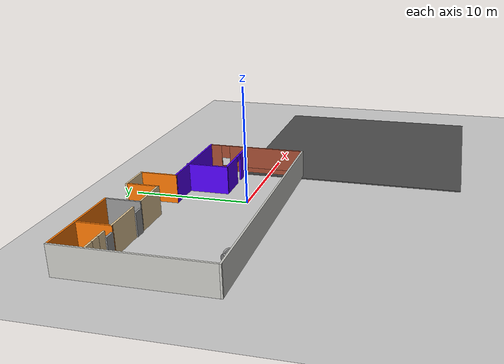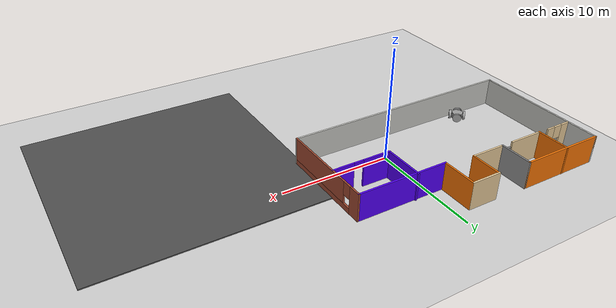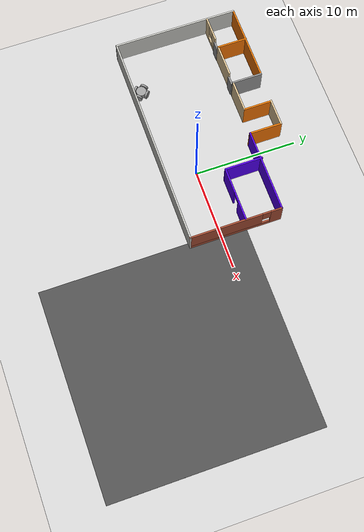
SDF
<sdf version="1.6">
 <world name="default">
  <plugin name="welcome_message" filename="libwelcome_message.so"><alwaysOn>true</alwaysOn></plugin>
  <light name="sun" type="directional">
   <pose>0 0 10 0 -0 0</pose>
   <diffuse>0.8 0.8 0.8 1</diffuse>
   <specular>0.2 0.2 0.2 1</specular>
   <attenuation>
    <range>1000</range>
    <constant>0.9</constant>
    <linear>0.01</linear>
    <quadratic>0.001</quadratic>
   </attenuation>
   <direction>-0.5 0.1 -0.9</direction>
  </light>
  <model name="ground_plane">
   <static>1</static>
   <link name="link">
    <collision name="collision">
     <geometry><plane><normal>0 0 1</normal><size>100 100</size></plane></geometry>
     <surface>
      <contact><collide_bitmask>65535</collide_bitmask></contact>
      <friction><ode><mu>100</mu><mu2>50</mu2></ode></friction>
     </surface>
    </collision>
    <visual name="visual">
     <cast_shadows>0</cast_shadows>
     <geometry><plane><normal>0 0 1</normal><size>100 100</size></plane></geometry>
     <material>
      <script><uri>file://media/materials/scripts/gazebo.material</uri><name>Gazebo/Grey</name></script>
     </material>
    </visual>
   </link>
  </model>
  <gravity>0 0 -9.8</gravity>
  <magnetic_field>6e-06 2.3e-05 -4.2e-05</magnetic_field>
  <atmosphere type="adiabatic"/>
  <physics name="default_physics" default="0" type="ode">
   <max_step_size>0.001</max_step_size>
   <real_time_factor>1</real_time_factor>
   <real_time_update_rate>1000</real_time_update_rate>
  </physics>
  <scene><ambient>0.4 0.4 0.4 1</ambient><background>0.7 0.7 0.7 1</background><shadows>1</shadows></scene>
  <spherical_coordinates>
   <surface_model>EARTH_WGS84</surface_model>
   <latitude_deg>0</latitude_deg>
   <longitude_deg>0</longitude_deg>
   <elevation>0</elevation>
   <heading_deg>0</heading_deg>
  </spherical_coordinates>
  <model name="homebuild">
   <pose>-3.76361 2.98886 0 0 -0 0</pose>
   <link name="Door_0">
    <collision name="Door_0_Collision">
     <geometry><box><size>0.9 0.17 2</size></box></geometry>
     <pose>0 0 1 0 -0 0</pose>
    </collision>
    <visual name="Door_0_Visual">
     <pose>0 0 1 0 -0 0</pose>
     <geometry><box><size>0.9 0.17 2</size></box></geometry>
     <material>
      <script><uri>file://media/materials/scripts/gazebo.material</uri><name>Gazebo/Grey</name></script>
     </material>
    </visual>
    <pose>-3.64915 3.13358 0 0 -0 0</pose>
   </link>
   <link name="Door_1">
    <collision name="Door_1_Collision">
     <geometry><box><size>0.9 0.17 2</size></box></geometry>
     <pose>0 0 1 0 -0 0</pose>
    </collision>
    <visual name="Door_1_Visual">
     <pose>0 0 1 0 -0 0</pose>
     <geometry><box><size>0.9 0.17 2</size></box></geometry>
     <material>
      <script><uri>file://media/materials/scripts/gazebo.material</uri><name>Gazebo/Grey</name></script>
     </material>
    </visual>
    <pose>-7.76563 3.18607 0 0 -0 0</pose>
   </link>
   <link name="Wall_0">
    <collision name="Wall_0_Collision">
     <geometry><box><size>2.75 0.15 2.5</size></box></geometry>
     <pose>0 0 1.25 0 -0 0</pose>
    </collision>
    <visual name="Wall_0_Visual">
     <pose>0 0 1.25 0 -0 0</pose>
     <geometry><box><size>2.75 0.15 2.5</size></box></geometry>
     <material>
      <script><uri>file://media/materials/scripts/gazebo.material</uri><name>Gazebo/Grey</name></script>
      <ambient>0.921569 0.807843 0.615686 1</ambient>
     </material>
     <meta><layer>0</layer></meta>
    </visual>
    <pose>1.275 5.88801 0 0 -0 0</pose>
   </link>
   <link name="Wall_1">
    <collision name="Wall_1_Collision">
     <geometry><box><size>3.25 0.15 2.5</size></box></geometry>
     <pose>0 0 1.25 0 -0 0</pose>
    </collision>
    <visual name="Wall_1_Visual">
     <pose>0 0 1.25 0 -0 0</pose>
     <geometry><box><size>3.25 0.15 2.5</size></box></geometry>
     <material>
      <script><uri>file://media/materials/scripts/gazebo.material</uri><name>Gazebo/Grey</name></script>
      <ambient>0.996078 0.47451 0.0196078 1</ambient>
     </material>
     <meta><layer>0</layer></meta>
    </visual>
    <pose>2.575 4.33801 0 0 0 -1.5708</pose>
   </link>
   <link name="Wall_12">
    <collision name="Wall_12_Collision">
     <geometry><box><size>3 0.15 2.5</size></box></geometry>
     <pose>0 0 1.25 0 -0 0</pose>
    </collision>
    <visual name="Wall_12_Visual">
     <pose>0 0 1.25 0 -0 0</pose>
     <geometry><box><size>3 0.15 2.5</size></box></geometry>
     <material>
      <script><uri>file://media/materials/scripts/gazebo.material</uri><name>Gazebo/Grey</name></script>
      <ambient>0.996078 0.47451 0.0196078 1</ambient>
     </material>
     <meta><layer>0</layer></meta>
    </visual>
    <pose>-7.25812 4.63699 0 0 0 -1.5708</pose>
   </link>
   <link name="Wall_13">
    <collision name="Wall_13_Collision">
     <geometry><box><size>3.25 0.15 2.5</size></box></geometry>
     <pose>0 0 1.25 0 -0 0</pose>
    </collision>
    <visual name="Wall_13_Visual">
     <pose>0 0 1.25 0 -0 0</pose>
     <geometry><box><size>3.25 0.15 2.5</size></box></geometry>
     <material>
      <script><uri>file://media/materials/scripts/gazebo.material</uri><name>Gazebo/Grey</name></script>
      <ambient>0.921569 0.807843 0.615686 1</ambient>
     </material>
     <meta><layer>0</layer></meta>
    </visual>
    <pose>-5.70812 3.21199 0 0 -0 0</pose>
   </link>
   <link name="Wall_15">
    <pose>-9.41016 3.27066 0 0 -0 0</pose>
    <visual name="Wall_15_Visual_0">
     <pose>-0.806301 0 1.25 0 -0 0</pose>
     <geometry><box><size>0.887397 0.15 2.5</size></box></geometry>
     <material>
      <script><uri>file://media/materials/scripts/gazebo.material</uri><name>Gazebo/Grey</name></script>
      <ambient>0.921569 0.807843 0.615686 1</ambient>
     </material>
     <meta><layer>0</layer></meta>
    </visual>
    <collision name="Wall_15_Collision_0">
     <geometry><box><size>0.887397 0.15 2.5</size></box></geometry>
     <pose>-0.806301 0 1.25 0 -0 0</pose>
    </collision>
    <visual name="Wall_15_Visual_1">
     <pose>0.443699 0 0.25 0 -0 0</pose>
     <geometry><box><size>1.6126 0.15 0.5</size></box></geometry>
     <material>
      <script><uri>file://media/materials/scripts/gazebo.material</uri><name>Gazebo/Grey</name></script>
      <ambient>0.921569 0.807843 0.615686 1</ambient>
     </material>
     <meta><layer>0</layer></meta>
    </visual>
    <collision name="Wall_15_Collision_1">
     <geometry><box><size>1.6126 0.15 0.5</size></box></geometry>
     <pose>0.443699 0 0.25 0 -0 0</pose>
    </collision>
    <visual name="Wall_15_Visual_2">
     <pose>0.843699 0 1.5 0 -0 0</pose>
     <geometry><box><size>0.812603 0.15 2</size></box></geometry>
     <material>
      <script><uri>file://media/materials/scripts/gazebo.material</uri><name>Gazebo/Grey</name></script>
      <ambient>0.921569 0.807843 0.615686 1</ambient>
     </material>
     <meta><layer>0</layer></meta>
    </visual>
    <collision name="Wall_15_Collision_2">
     <geometry><box><size>0.812603 0.15 2</size></box></geometry>
     <pose>0.843699 0 1.5 0 -0 0</pose>
    </collision>
    <visual name="Wall_15_Visual_3">
     <pose>0.037397 0 1.9 0 -0 0</pose>
     <geometry><box><size>0.8 0.15 1.2</size></box></geometry>
     <material>
      <script><uri>file://media/materials/scripts/gazebo.material</uri><name>Gazebo/Grey</name></script>
      <ambient>0.921569 0.807843 0.615686 1</ambient>
     </material>
     <meta><layer>0</layer></meta>
    </visual>
    <collision name="Wall_15_Collision_3">
     <geometry><box><size>0.8 0.15 1.2</size></box></geometry>
     <pose>0.037397 0 1.9 0 -0 0</pose>
    </collision>
   </link>
   <link name="Wall_17">
    <collision name="Wall_17_Collision">
     <geometry><box><size>3.75 0.15 2.5</size></box></geometry>
     <pose>0 0 1.25 0 -0 0</pose>
    </collision>
    <visual name="Wall_17_Visual">
     <pose>0 0 1.25 0 -0 0</pose>
     <geometry><box><size>3.75 0.15 2.5</size></box></geometry>
     <material>
      <script><uri>file://media/materials/scripts/gazebo.material</uri><name>Gazebo/Grey</name></script>
      <ambient>0.333333 0 1 1</ambient>
     </material>
     <meta><layer>0</layer></meta>
    </visual>
    <pose>5.32096 1.1056 0 0 0 -1.5708</pose>
   </link>
   <link name="Wall_18">
    <pose>7.99596 -0.694395 0 0 -0 0</pose>
    <visual name="Wall_18_Visual_0">
     <pose>-1.4687 0 1.25 0 -0 0</pose>
     <geometry><box><size>2.5626 0.15 2.5</size></box></geometry>
     <material>
      <script><uri>file://media/materials/scripts/gazebo.material</uri><name>Gazebo/Grey</name></script>
      <ambient>0.333333 0 1 1</ambient>
     </material>
     <meta><layer>0</layer></meta>
    </visual>
    <collision name="Wall_18_Collision_0">
     <geometry><box><size>2.5626 0.15 2.5</size></box></geometry>
     <pose>-1.4687 0 1.25 0 -0 0</pose>
    </collision>
    <visual name="Wall_18_Visual_1">
     <pose>1.7313 0 1.25 0 -0 0</pose>
     <geometry><box><size>2.0374 0.15 2.5</size></box></geometry>
     <material>
      <script><uri>file://media/materials/scripts/gazebo.material</uri><name>Gazebo/Grey</name></script>
      <ambient>0.333333 0 1 1</ambient>
     </material>
     <meta><layer>0</layer></meta>
    </visual>
    <collision name="Wall_18_Collision_1">
     <geometry><box><size>2.0374 0.15 2.5</size></box></geometry>
     <pose>1.7313 0 1.25 0 -0 0</pose>
    </collision>
    <visual name="Wall_18_Visual_2">
     <pose>0.262602 0 2.25 0 -0 0</pose>
     <geometry><box><size>0.9 0.15 0.5</size></box></geometry>
     <material>
      <script><uri>file://media/materials/scripts/gazebo.material</uri><name>Gazebo/Grey</name></script>
      <ambient>0.333333 0 1 1</ambient>
     </material>
     <meta><layer>0</layer></meta>
    </visual>
    <collision name="Wall_18_Collision_2">
     <geometry><box><size>0.9 0.15 0.5</size></box></geometry>
     <pose>0.262602 0 2.25 0 -0 0</pose>
    </collision>
   </link>
   <link name="Wall_2">
    <collision name="Wall_2_Collision">
     <geometry><box><size>8.25 0.15 2.5</size></box></geometry>
     <pose>0 0 1.25 0 -0 0</pose>
    </collision>
    <visual name="Wall_2_Visual">
     <pose>0 0 1.25 0 -0 0</pose>
     <geometry><box><size>8.25 0.15 2.5</size></box></geometry>
     <material>
      <script><uri>file://media/materials/scripts/gazebo.material</uri><name>Gazebo/Grey</name></script>
      <ambient>0.333333 0 1 1</ambient>
     </material>
     <meta><layer>0</layer></meta>
    </visual>
    <pose>6.625 2.78801 0 0 -0 0</pose>
   </link>
   <link name="Wall_3">
    <pose>10.675 -1.63699 0 0 0 -1.5708</pose>
    <visual name="Wall_3_Visual_0">
     <pose>-3.93124 0 1.25 0 -0 0</pose>
     <geometry><box><size>1.13753 0.15 2.5</size></box></geometry>
     <material>
      <script><uri>file://media/materials/scripts/gazebo.material</uri><name>Gazebo/Bricks</name></script>
      <ambient>1 1 1 1</ambient>
     </material>
     <meta><layer>0</layer></meta>
    </visual>
    <collision name="Wall_3_Collision_0">
     <geometry><box><size>1.13753 0.15 2.5</size></box></geometry>
     <pose>-3.93124 0 1.25 0 -0 0</pose>
    </collision>
    <visual name="Wall_3_Visual_1">
     <pose>0.568765 0 0.25 0 -0 0</pose>
     <geometry><box><size>7.86247 0.15 0.5</size></box></geometry>
     <material>
      <script><uri>file://media/materials/scripts/gazebo.material</uri><name>Gazebo/Bricks</name></script>
      <ambient>1 1 1 1</ambient>
     </material>
     <meta><layer>0</layer></meta>
    </visual>
    <collision name="Wall_3_Collision_1">
     <geometry><box><size>7.86247 0.15 0.5</size></box></geometry>
     <pose>0.568765 0 0.25 0 -0 0</pose>
    </collision>
    <visual name="Wall_3_Visual_2">
     <pose>0.968765 0 1.5 0 -0 0</pose>
     <geometry><box><size>7.06247 0.15 2</size></box></geometry>
     <material>
      <script><uri>file://media/materials/scripts/gazebo.material</uri><name>Gazebo/Bricks</name></script>
      <ambient>1 1 1 1</ambient>
     </material>
     <meta><layer>0</layer></meta>
    </visual>
    <collision name="Wall_3_Collision_2">
     <geometry><box><size>7.06247 0.15 2</size></box></geometry>
     <pose>0.968765 0 1.5 0 -0 0</pose>
    </collision>
    <visual name="Wall_3_Visual_3">
     <pose>-2.96247 0 1.9 0 -0 0</pose>
     <geometry><box><size>0.8 0.15 1.2</size></box></geometry>
     <material>
      <script><uri>file://media/materials/scripts/gazebo.material</uri><name>Gazebo/Bricks</name></script>
      <ambient>1 1 1 1</ambient>
     </material>
     <meta><layer>0</layer></meta>
    </visual>
    <collision name="Wall_3_Collision_3">
     <geometry><box><size>0.8 0.15 1.2</size></box></geometry>
     <pose>-2.96247 0 1.9 0 -0 0</pose>
    </collision>
   </link>
   <link name="Wall_4">
    <collision name="Wall_4_Collision">
     <geometry><box><size>21.5 0.15 2.5</size></box></geometry>
     <pose>0 0 1.25 0 -0 0</pose>
    </collision>
    <visual name="Wall_4_Visual">
     <pose>0 0 1.25 0 -0 0</pose>
     <geometry><box><size>21.5 0.15 2.5</size></box></geometry>
     <material>
      <script><uri>file://media/materials/scripts/gazebo.material</uri><name>Gazebo/CeilingTiled</name></script>
      <ambient>0.996078 0.47451 0.0196078 1</ambient>
     </material>
     <meta><layer>0</layer></meta>
    </visual>
    <pose>0 -6.06199 0 0 -0 3.14159</pose>
   </link>
   <link name="Wall_5">
    <collision name="Wall_5_Collision">
     <geometry><box><size>12.25 0.15 2.5</size></box></geometry>
     <pose>0 0 1.25 0 -0 0</pose>
    </collision>
    <visual name="Wall_5_Visual">
     <pose>0 0 1.25 0 -0 0</pose>
     <geometry><box><size>12.25 0.15 2.5</size></box></geometry>
     <material>
      <script><uri>file://media/materials/scripts/gazebo.material</uri><name>Gazebo/CeilingTiled</name></script>
      <ambient>0.996078 0.47451 0.0196078 1</ambient>
     </material>
     <meta><layer>0</layer></meta>
    </visual>
    <pose>-10.675 -0.01199 0 0 -0 1.5708</pose>
   </link>
   <link name="Wall_6">
    <collision name="Wall_6_Collision">
     <geometry><box><size>7.75 0.15 2.5</size></box></geometry>
     <pose>0 0 1.25 0 -0 0</pose>
    </collision>
    <visual name="Wall_6_Visual">
     <pose>0 0 1.25 0 -0 0</pose>
     <geometry><box><size>7.75 0.15 2.5</size></box></geometry>
     <material>
      <script><uri>file://media/materials/scripts/gazebo.material</uri><name>Gazebo/Grey</name></script>
      <ambient>0.996078 0.47451 0.0196078 1</ambient>
     </material>
     <meta><layer>0</layer></meta>
    </visual>
    <pose>-6.875 6.03801 0 0 -0 0</pose>
   </link>
   <link name="Wall_7">
    <collision name="Wall_7_Collision">
     <geometry><box><size>3 0.15 2.5</size></box></geometry>
     <pose>0 0 1.25 0 -0 0</pose>
    </collision>
    <visual name="Wall_7_Visual">
     <pose>0 0 1.25 0 -0 0</pose>
     <geometry><box><size>3 0.15 2.5</size></box></geometry>
     <material>
      <script><uri>file://media/materials/scripts/gazebo.material</uri><name>Gazebo/Grey</name></script>
      <ambient>1 1 1 1</ambient>
     </material>
     <meta><layer>0</layer></meta>
    </visual>
    <pose>-3.075 4.61301 0 0 0 -1.5708</pose>
   </link>
   <link name="Wall_8">
    <collision name="Wall_8_Collision">
     <geometry><box><size>3.25 0.15 2.5</size></box></geometry>
     <pose>0 0 1.25 0 -0 0</pose>
    </collision>
    <visual name="Wall_8_Visual">
     <pose>0 0 1.25 0 -0 0</pose>
     <geometry><box><size>3.25 0.15 2.5</size></box></geometry>
     <material>
      <script><uri>file://media/materials/scripts/gazebo.material</uri><name>Gazebo/Grey</name></script>
      <ambient>0.921569 0.807843 0.615686 1</ambient>
     </material>
     <meta><layer>0</layer></meta>
    </visual>
    <pose>-1.525 3.18801 0 0 -0 0</pose>
   </link>
   <link name="Wall_9">
    <collision name="Wall_9_Collision">
     <geometry><box><size>2.75 0.15 2.5</size></box></geometry>
     <pose>0 0 1.25 0 -0 0</pose>
    </collision>
    <visual name="Wall_9_Visual">
     <pose>0 0 1.25 0 -0 0</pose>
     <geometry><box><size>2.75 0.15 2.5</size></box></geometry>
     <material>
      <script><uri>file://media/materials/scripts/gazebo.material</uri><name>Gazebo/Grey</name></script>
      <ambient>0.996078 0.47451 0.0196078 1</ambient>
     </material>
     <meta><layer>0</layer></meta>
    </visual>
    <pose>0.025 4.48801 0 0 -0 1.5708</pose>
   </link>
   <static>1</static>
  </model>
  <model name="4WheelsRbt_clone_clone">
   <link name="link_0">
    <pose>0.010622 0.000366 -0.16 0 -0 0</pose>
    <inertial>
     <mass>1</mass>
     <inertia><ixx>0.145833</ixx><ixy>0</ixy><ixz>0</ixz><iyy>0.145833</iyy><iyz>0</iyz><izz>0.125</izz></inertia>
    </inertial>
    <visual name="visual">
     <pose>0 0 0.2 0 -0 0</pose>
     <geometry><cylinder><radius>0.5</radius><length>0.5</length></cylinder></geometry>
     <material>
      <lighting>1</lighting>
      <script><uri>file://media/materials/scripts/gazebo.material</uri><name>Gazebo/Grey</name></script>
      <shader type="pixel"><normal_map>__default__</normal_map></shader>
      <ambient>0.3 0.3 0.3 1</ambient>
      <diffuse>0.7 0.7 0.7 1</diffuse>
      <specular>0.01 0.01 0.01 1</specular>
      <emissive>0 0 0 1</emissive>
     </material>
    </visual>
    <collision name="collision">
     <pose>0 0 0.2 0 -0 0</pose>
     <geometry><cylinder><radius>0.5</radius><length>0.5</length></cylinder></geometry>
     <surface>
      <friction>
       <ode><mu>1</mu><mu2>1</mu2><fdir1>0 0 0</fdir1><slip1>0</slip1><slip2>0</slip2></ode>
       <torsional>
        <coefficient>1</coefficient>
        <patch_radius>0</patch_radius>
        <surface_radius>0</surface_radius>
        <use_patch_radius>1</use_patch_radius>
        <ode><slip>0</slip></ode>
       </torsional>
      </friction>
      <bounce><restitution_coefficient>0</restitution_coefficient><threshold>1e+06</threshold></bounce>
      <contact>
       <collide_without_contact>0</collide_without_contact>
       <collide_without_contact_bitmask>1</collide_without_contact_bitmask>
       <collide_bitmask>1</collide_bitmask>
       <ode>
        <soft_cfm>0</soft_cfm>
        <soft_erp>0.2</soft_erp>
        <kp>1e+13</kp>
        <kd>1</kd>
        <max_vel>0.01</max_vel>
        <min_depth>0</min_depth>
       </ode>
       <bullet>
        <split_impulse>1</split_impulse>
        <split_impulse_penetration_threshold>-0.01</split_impulse_penetration_threshold>
        <soft_cfm>0</soft_cfm>
        <soft_erp>0.2</soft_erp>
        <kp>1e+13</kp>
        <kd>1</kd>
       </bullet>
      </contact>
     </surface>
    </collision>
   </link>
   <link name="link_2">
    <pose>0.001015 -0.605252 0.04 0 -0 3.12762</pose>
    <inertial>
     <mass>1</mass>
     <inertia><ixx>0.145833</ixx><ixy>0</ixy><ixz>0</ixz><iyy>0.145833</iyy><iyz>0</iyz><izz>0.125</izz></inertia>
    </inertial>
    <visual name="visual">
     <pose>0 0 0 1.5707 -0 0</pose>
     <geometry><cylinder><radius>0.4</radius><length>0.2</length></cylinder></geometry>
     <material>
      <lighting>1</lighting>
      <script><uri>file://media/materials/scripts/gazebo.material</uri><name>Gazebo/Grey</name></script>
      <shader type="pixel"><normal_map>__default__</normal_map></shader>
      <ambient>0.3 0.3 0.3 1</ambient>
      <diffuse>0.7 0.7 0.7 1</diffuse>
      <specular>0.01 0.01 0.01 1</specular>
      <emissive>0 0 0 1</emissive>
     </material>
    </visual>
    <collision name="collision">
     <pose>0 0 0 1.5707 -0 0</pose>
     <geometry><cylinder><radius>0.4</radius><length>0.2</length></cylinder></geometry>
     <surface>
      <friction>
       <ode><mu>1</mu><mu2>1</mu2><fdir1>0 0 0</fdir1><slip1>0</slip1><slip2>0</slip2></ode>
       <torsional>
        <coefficient>1</coefficient>
        <patch_radius>0</patch_radius>
        <surface_radius>0</surface_radius>
        <use_patch_radius>1</use_patch_radius>
        <ode><slip>0</slip></ode>
       </torsional>
      </friction>
      <bounce><restitution_coefficient>0</restitution_coefficient><threshold>1e+06</threshold></bounce>
      <contact>
       <collide_without_contact>0</collide_without_contact>
       <collide_without_contact_bitmask>1</collide_without_contact_bitmask>
       <collide_bitmask>1</collide_bitmask>
       <ode>
        <soft_cfm>0</soft_cfm>
        <soft_erp>0.2</soft_erp>
        <kp>1e+13</kp>
        <kd>1</kd>
        <max_vel>0.01</max_vel>
        <min_depth>0</min_depth>
       </ode>
       <bullet>
        <split_impulse>1</split_impulse>
        <split_impulse_penetration_threshold>-0.01</split_impulse_penetration_threshold>
        <soft_cfm>0</soft_cfm>
        <soft_erp>0.2</soft_erp>
        <kp>1e+13</kp>
        <kd>1</kd>
       </bullet>
      </contact>
     </surface>
    </collision>
   </link>
   <link name="link_2_clone">
    <pose>-0.639114 0.000366 0.04 0 -0 1.58369</pose>
    <inertial>
     <mass>1</mass>
     <inertia><ixx>0.145833</ixx><ixy>0</ixy><ixz>0</ixz><iyy>0.145833</iyy><iyz>0</iyz><izz>0.125</izz></inertia>
    </inertial>
    <visual name="visual">
     <pose>0 0 0 1.5707 -0 0</pose>
     <geometry><cylinder><radius>0.4</radius><length>0.2</length></cylinder></geometry>
     <material>
      <lighting>1</lighting>
      <script><uri>file://media/materials/scripts/gazebo.material</uri><name>Gazebo/Grey</name></script>
      <shader type="pixel"><normal_map>__default__</normal_map></shader>
      <ambient>0.3 0.3 0.3 1</ambient>
      <diffuse>0.7 0.7 0.7 1</diffuse>
      <specular>0.01 0.01 0.01 1</specular>
      <emissive>0 0 0 1</emissive>
     </material>
    </visual>
    <collision name="collision">
     <pose>0 0 0 1.5707 -0 0</pose>
     <geometry><cylinder><radius>0.4</radius><length>0.2</length></cylinder></geometry>
     <surface>
      <friction>
       <ode><mu>1</mu><mu2>1</mu2><fdir1>0 0 0</fdir1><slip1>0</slip1><slip2>0</slip2></ode>
       <torsional>
        <coefficient>1</coefficient>
        <patch_radius>0</patch_radius>
        <surface_radius>0</surface_radius>
        <use_patch_radius>1</use_patch_radius>
        <ode><slip>0</slip></ode>
       </torsional>
      </friction>
      <bounce><restitution_coefficient>0</restitution_coefficient><threshold>1e+06</threshold></bounce>
      <contact>
       <collide_without_contact>0</collide_without_contact>
       <collide_without_contact_bitmask>1</collide_without_contact_bitmask>
       <collide_bitmask>1</collide_bitmask>
       <ode>
        <soft_cfm>0</soft_cfm>
        <soft_erp>0.2</soft_erp>
        <kp>1e+13</kp>
        <kd>1</kd>
        <max_vel>0.01</max_vel>
        <min_depth>0</min_depth>
       </ode>
       <bullet>
        <split_impulse>1</split_impulse>
        <split_impulse_penetration_threshold>-0.01</split_impulse_penetration_threshold>
        <soft_cfm>0</soft_cfm>
        <soft_erp>0.2</soft_erp>
        <kp>1e+13</kp>
        <kd>1</kd>
       </bullet>
      </contact>
     </surface>
    </collision>
   </link>
   <link name="link_2_clone_0">
    <pose>0.010622 0.604213 0.04 0 0 -0.009529</pose>
    <inertial>
     <mass>1</mass>
     <inertia><ixx>0.145833</ixx><ixy>0</ixy><ixz>0</ixz><iyy>0.145833</iyy><iyz>0</iyz><izz>0.125</izz></inertia>
    </inertial>
    <visual name="visual">
     <pose>0 0 0 1.5707 -0 0</pose>
     <geometry><cylinder><radius>0.4</radius><length>0.2</length></cylinder></geometry>
     <material>
      <lighting>1</lighting>
      <script><uri>file://media/materials/scripts/gazebo.material</uri><name>Gazebo/Grey</name></script>
      <shader type="pixel"><normal_map>__default__</normal_map></shader>
      <ambient>0.3 0.3 0.3 1</ambient>
      <diffuse>0.7 0.7 0.7 1</diffuse>
      <specular>0.01 0.01 0.01 1</specular>
      <emissive>0 0 0 1</emissive>
     </material>
    </visual>
    <collision name="collision">
     <pose>0 0 0 1.5707 -0 0</pose>
     <geometry><cylinder><radius>0.4</radius><length>0.2</length></cylinder></geometry>
     <surface>
      <friction>
       <ode><mu>1</mu><mu2>1</mu2><fdir1>0 0 0</fdir1><slip1>0</slip1><slip2>0</slip2></ode>
       <torsional>
        <coefficient>1</coefficient>
        <patch_radius>0</patch_radius>
        <surface_radius>0</surface_radius>
        <use_patch_radius>1</use_patch_radius>
        <ode><slip>0</slip></ode>
       </torsional>
      </friction>
      <bounce><restitution_coefficient>0</restitution_coefficient><threshold>1e+06</threshold></bounce>
      <contact>
       <collide_without_contact>0</collide_without_contact>
       <collide_without_contact_bitmask>1</collide_without_contact_bitmask>
       <collide_bitmask>1</collide_bitmask>
       <ode>
        <soft_cfm>0</soft_cfm>
        <soft_erp>0.2</soft_erp>
        <kp>1e+13</kp>
        <kd>1</kd>
        <max_vel>0.01</max_vel>
        <min_depth>0</min_depth>
       </ode>
       <bullet>
        <split_impulse>1</split_impulse>
        <split_impulse_penetration_threshold>-0.01</split_impulse_penetration_threshold>
        <soft_cfm>0</soft_cfm>
        <soft_erp>0.2</soft_erp>
        <kp>1e+13</kp>
        <kd>1</kd>
       </bullet>
      </contact>
     </surface>
    </collision>
   </link>
   <link name="link_2_clone_1">
    <pose>0.616862 0.000366 0.04 0 0 -1.58633</pose>
    <inertial>
     <mass>1</mass>
     <inertia><ixx>0.145833</ixx><ixy>0</ixy><ixz>0</ixz><iyy>0.145833</iyy><iyz>0</iyz><izz>0.125</izz></inertia>
    </inertial>
    <visual name="visual">
     <pose>0 0 0 1.5707 -0 0</pose>
     <geometry><cylinder><radius>0.4</radius><length>0.2</length></cylinder></geometry>
     <material>
      <lighting>1</lighting>
      <script><uri>file://media/materials/scripts/gazebo.material</uri><name>Gazebo/Grey</name></script>
      <shader type="pixel"><normal_map>__default__</normal_map></shader>
      <ambient>0.3 0.3 0.3 1</ambient>
      <diffuse>0.7 0.7 0.7 1</diffuse>
      <specular>0.01 0.01 0.01 1</specular>
      <emissive>0 0 0 1</emissive>
     </material>
    </visual>
    <collision name="collision">
     <pose>0 0 0 1.5707 -0 0</pose>
     <geometry><cylinder><radius>0.4</radius><length>0.2</length></cylinder></geometry>
     <surface>
      <friction>
       <ode><mu>1</mu><mu2>1</mu2><fdir1>0 0 0</fdir1><slip1>0</slip1><slip2>0</slip2></ode>
       <torsional>
        <coefficient>1</coefficient>
        <patch_radius>0</patch_radius>
        <surface_radius>0</surface_radius>
        <use_patch_radius>1</use_patch_radius>
        <ode><slip>0</slip></ode>
       </torsional>
      </friction>
      <bounce><restitution_coefficient>0</restitution_coefficient><threshold>1e+06</threshold></bounce>
      <contact>
       <collide_without_contact>0</collide_without_contact>
       <collide_without_contact_bitmask>1</collide_without_contact_bitmask>
       <collide_bitmask>1</collide_bitmask>
       <ode>
        <soft_cfm>0</soft_cfm>
        <soft_erp>0.2</soft_erp>
        <kp>1e+13</kp>
        <kd>1</kd>
        <max_vel>0.01</max_vel>
        <min_depth>0</min_depth>
       </ode>
       <bullet>
        <split_impulse>1</split_impulse>
        <split_impulse_penetration_threshold>-0.01</split_impulse_penetration_threshold>
        <soft_cfm>0</soft_cfm>
        <soft_erp>0.2</soft_erp>
        <kp>1e+13</kp>
        <kd>1</kd>
       </bullet>
      </contact>
     </surface>
    </collision>
   </link>
   <joint name="link_0_JOINT_0" type="revolute">
    <parent>link_0</parent>
    <child>link_2</child>
    <axis>
     <xyz>0 1 0</xyz>
     <use_parent_model_frame>0</use_parent_model_frame>
     <limit>
      <lower>-1.79769e+308</lower>
      <upper>1.79769e+308</upper>
      <effort>-1</effort>
      <velocity>-1</velocity>
     </limit>
     <dynamics>
      <spring_reference>0</spring_reference>
      <spring_stiffness>0</spring_stiffness>
      <damping>0</damping>
      <friction>0</friction>
     </dynamics>
    </axis>
    <physics>
     <ode><limit><cfm>0</cfm><erp>0.2</erp></limit><suspension><cfm>0</cfm><erp>0.2</erp></suspension></ode>
    </physics>
   </joint>
   <joint name="link_0_JOINT_2" type="revolute">
    <parent>link_0</parent>
    <child>link_2_clone_0</child>
    <axis>
     <xyz>0 1 0</xyz>
     <use_parent_model_frame>0</use_parent_model_frame>
     <limit>
      <lower>-1.79769e+308</lower>
      <upper>1.79769e+308</upper>
      <effort>-1</effort>
      <velocity>-1</velocity>
     </limit>
     <dynamics>
      <spring_reference>0</spring_reference>
      <spring_stiffness>0</spring_stiffness>
      <damping>0</damping>
     </dynamics>
    </axis>
    <physics>
     <ode><limit><cfm>0</cfm><erp>0.2</erp></limit><suspension><cfm>0</cfm><erp>0.2</erp></suspension></ode>
    </physics>
   </joint>
   <joint name="link_0_JOINT_3" type="revolute">
    <parent>link_0</parent>
    <child>link_2_clone_1</child>
    <axis>
     <xyz>0 1 0</xyz>
     <use_parent_model_frame>0</use_parent_model_frame>
     <limit>
      <lower>-1.79769e+308</lower>
      <upper>1.79769e+308</upper>
      <effort>-1</effort>
      <velocity>-1</velocity>
     </limit>
     <dynamics>
      <spring_reference>0</spring_reference>
      <spring_stiffness>0</spring_stiffness>
      <damping>0</damping>
     </dynamics>
    </axis>
    <physics>
     <ode><limit><cfm>0</cfm><erp>0.2</erp></limit><suspension><cfm>0</cfm><erp>0.2</erp></suspension></ode>
    </physics>
   </joint>
   <joint name="link_2_clone_JOINT_1" type="revolute">
    <parent>link_0</parent>
    <child>link_2_clone</child>
    <axis>
     <xyz>0 1 0</xyz>
     <use_parent_model_frame>0</use_parent_model_frame>
     <limit>
      <lower>-1.79769e+308</lower>
      <upper>1.79769e+308</upper>
      <effort>-1</effort>
      <velocity>-1</velocity>
     </limit>
     <dynamics>
      <spring_reference>0</spring_reference>
      <spring_stiffness>0</spring_stiffness>
      <damping>0</damping>
      <friction>0</friction>
     </dynamics>
    </axis>
    <physics>
     <ode><limit><cfm>0</cfm><erp>0.2</erp></limit><suspension><cfm>0</cfm><erp>0.2</erp></suspension></ode>
    </physics>
   </joint>
   <static>0</static>
   <pose>-9.87396 -2.15672 0.36 1e-06 -1e-06 2.39138</pose>
  </model>
  <model name="asphalt_plane">
   <static>1</static>
   <link name="link">
    <collision name="collision"><geometry><box><size>20 20 0.1</size></box></geometry></collision>
    <visual name="visual">
     <cast_shadows>0</cast_shadows>
     <geometry><box><size>20 20 0.1</size></box></geometry>
     <material>
      <script>
       <uri>model://asphalt_plane/materials/scripts</uri>
       <uri>model://asphalt_plane/materials/textures</uri>
       <name>vrc/asphalt</name>
      </script>
     </material>
    </visual>
   </link>
   <pose>16.4677 -7.52168 0 0 -0 0</pose>
  </model>
 </world>
</sdf>
